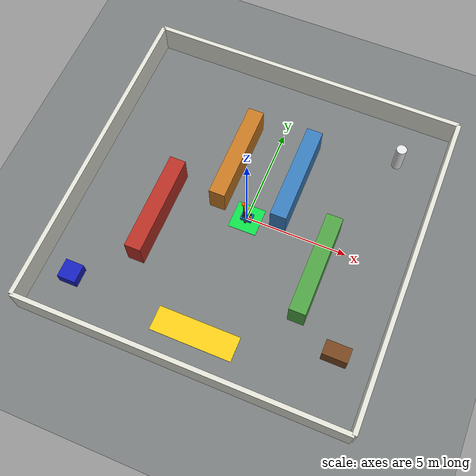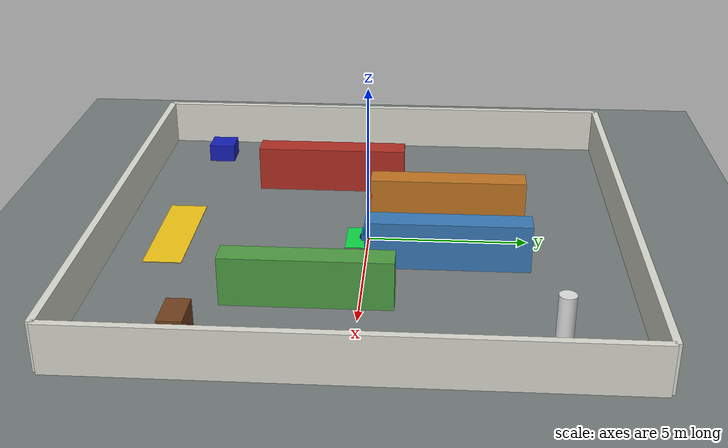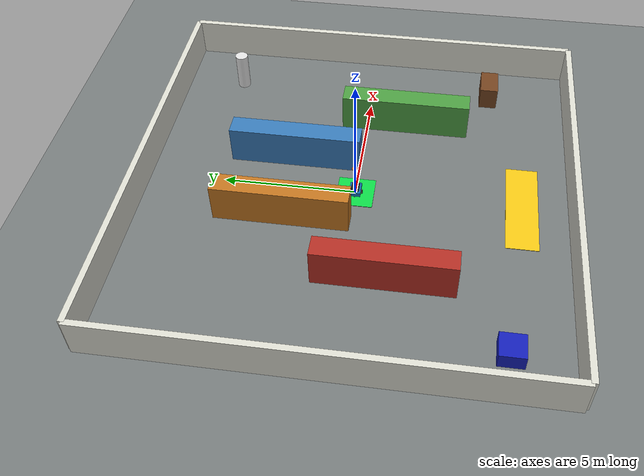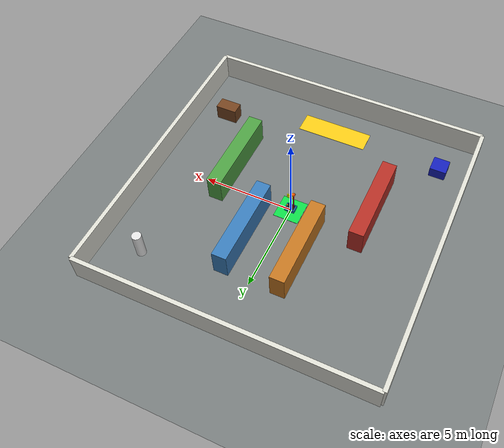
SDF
<sdf version="1.8">
  <world name="warehouse_world">
    <physics name="1ms" type="ignored">
      <max_step_size>0.001</max_step_size>
      <real_time_factor>1.0</real_time_factor>
    </physics>

    <plugin filename="gz-sim-physics-system" name="gz::sim::systems::Physics" />
    <plugin filename="gz-sim-user-commands-system" name="gz::sim::systems::UserCommands" />
    <plugin filename="gz-sim-scene-broadcaster-system" name="gz::sim::systems::SceneBroadcaster" />
    <plugin filename="gz-sim-sensors-system" name="gz::sim::systems::Sensors">
      <render_engine>ogre2</render_engine>
    </plugin>

    <light type="directional" name="sun">
      <pose>0 0 10 0 0 0</pose>
      <diffuse>1 1 1 1</diffuse>
      <specular>0.2 0.2 0.2 1</specular>
      <direction>-0.4 0.5 -1</direction>
    </light>

    <scene>
      <ambient>0.65 0.65 0.65 1</ambient>
      <background>0.82 0.88 0.94 1</background>
      <shadows>true</shadows>
    </scene>

    <model name="ground_plane">
      <static>true</static>
      <link name="link">
        <collision name="collision">
          <geometry>
            <plane>
              <normal>0 0 1</normal>
              <size>24 24</size>
            </plane>
          </geometry>
        </collision>
        <visual name="visual">
          <geometry>
            <plane>
              <normal>0 0 1</normal>
              <size>24 24</size>
            </plane>
          </geometry>
          <material>
            <ambient>0.46 0.48 0.48 1</ambient>
            <diffuse>0.46 0.48 0.48 1</diffuse>
          </material>
        </visual>
      </link>
    </model>

    <model name="wall_north">
      <static>true</static>
      <pose>0 8 0.75 0 0 0</pose>
      <link name="link">
        <collision name="collision"><geometry><box><size>16 0.22 1.5</size></box></geometry></collision>
        <visual name="visual"><geometry><box><size>16 0.22 1.5</size></box></geometry><material><ambient>0.86 0.86 0.82 1</ambient><diffuse>0.86 0.86 0.82 1</diffuse></material></visual>
      </link>
    </model>

    <model name="wall_south">
      <static>true</static>
      <pose>0 -8 0.75 0 0 0</pose>
      <link name="link">
        <collision name="collision"><geometry><box><size>16 0.22 1.5</size></box></geometry></collision>
        <visual name="visual"><geometry><box><size>16 0.22 1.5</size></box></geometry><material><ambient>0.86 0.86 0.82 1</ambient><diffuse>0.86 0.86 0.82 1</diffuse></material></visual>
      </link>
    </model>

    <model name="wall_east">
      <static>true</static>
      <pose>8 0 0.75 0 0 0</pose>
      <link name="link">
        <collision name="collision"><geometry><box><size>0.22 16 1.5</size></box></geometry></collision>
        <visual name="visual"><geometry><box><size>0.22 16 1.5</size></box></geometry><material><ambient>0.86 0.86 0.82 1</ambient><diffuse>0.86 0.86 0.82 1</diffuse></material></visual>
      </link>
    </model>

    <model name="wall_west">
      <static>true</static>
      <pose>-8 0 0.75 0 0 0</pose>
      <link name="link">
        <collision name="collision"><geometry><box><size>0.22 16 1.5</size></box></geometry></collision>
        <visual name="visual"><geometry><box><size>0.22 16 1.5</size></box></geometry><material><ambient>0.86 0.86 0.82 1</ambient><diffuse>0.86 0.86 0.82 1</diffuse></material></visual>
      </link>
    </model>

    <model name="loading_zone_visual">
      <static>true</static>
      <pose>0 -6.2 0.011 0 0 0</pose>
      <link name="link">
        <visual name="visual">
          <geometry><box><size>4.0 1.2 0.02</size></box></geometry>
          <material><ambient>0.95 0.78 0.08 1</ambient><diffuse>0.95 0.78 0.08 1</diffuse></material>
        </visual>
      </link>
    </model>

    <model name="start_zone_visual">
      <static>true</static>
      <pose>0 0 0.012 0 0 0</pose>
      <link name="link">
        <visual name="visual">
          <geometry><box><size>1.4 1.4 0.02</size></box></geometry>
          <material><ambient>0.05 0.85 0.28 1</ambient><diffuse>0.05 0.85 0.28 1</diffuse></material>
        </visual>
      </link>
    </model>

    <include>
      <uri>model://my_robot</uri>
      <name>my_robot</name>
      <pose>0 0 0 0 0 0</pose>
    </include>

    <model name="rack_outer_left">
      <static>true</static>
      <pose>-4.0 -1.5 0.75 0 0 0</pose>
      <link name="link">
        <collision name="collision"><geometry><box><size>0.8 5.0 1.5</size></box></geometry></collision>
        <visual name="visual"><geometry><box><size>0.8 5.0 1.5</size></box></geometry><material><ambient>0.70 0.18 0.14 1</ambient><diffuse>0.70 0.18 0.14 1</diffuse></material></visual>
      </link>
    </model>

    <model name="rack_inner_left">
      <static>true</static>
      <pose>-1.55 2.5 0.75 0 0 0</pose>
      <link name="link">
        <collision name="collision"><geometry><box><size>0.8 5.0 1.5</size></box></geometry></collision>
        <visual name="visual"><geometry><box><size>0.8 5.0 1.5</size></box></geometry><material><ambient>0.76 0.46 0.13 1</ambient><diffuse>0.76 0.46 0.13 1</diffuse></material></visual>
      </link>
    </model>

    <model name="rack_inner_right">
      <static>true</static>
      <pose>1.55 2.5 0.75 0 0 0</pose>
      <link name="link">
        <collision name="collision"><geometry><box><size>0.8 5.0 1.5</size></box></geometry></collision>
        <visual name="visual"><geometry><box><size>0.8 5.0 1.5</size></box></geometry><material><ambient>0.22 0.48 0.72 1</ambient><diffuse>0.22 0.48 0.72 1</diffuse></material></visual>
      </link>
    </model>

    <model name="rack_outer_right">
      <static>true</static>
      <pose>4.0 -1.5 0.75 0 0 0</pose>
      <link name="link">
        <collision name="collision"><geometry><box><size>0.8 5.0 1.5</size></box></geometry></collision>
        <visual name="visual"><geometry><box><size>0.8 5.0 1.5</size></box></geometry><material><ambient>0.30 0.62 0.26 1</ambient><diffuse>0.30 0.62 0.26 1</diffuse></material></visual>
      </link>
    </model>

    <model name="charging_station">
      <static>true</static>
      <pose>-6.4 -5.8 0.30 0 0 0</pose>
      <link name="link">
        <collision name="collision"><geometry><box><size>0.9 0.9 0.6</size></box></geometry></collision>
        <visual name="visual"><geometry><box><size>0.9 0.9 0.6</size></box></geometry><material><ambient>0.08 0.12 0.72 1</ambient><diffuse>0.08 0.12 0.72 1</diffuse></material></visual>
      </link>
    </model>

    <model name="packing_station">
      <static>true</static>
      <pose>6.2 -4.8 0.45 0 0 0</pose>
      <link name="link">
        <collision name="collision"><geometry><box><size>1.2 0.7 0.9</size></box></geometry></collision>
        <visual name="visual"><geometry><box><size>1.2 0.7 0.9</size></box></geometry><material><ambient>0.45 0.26 0.12 1</ambient><diffuse>0.45 0.26 0.12 1</diffuse></material></visual>
      </link>
    </model>

    <model name="landmark_pillar">
      <static>true</static>
      <pose>5.8 5.6 0.75 0 0 0</pose>
      <link name="link">
        <collision name="collision"><geometry><cylinder><radius>0.25</radius><length>1.5</length></cylinder></geometry></collision>
        <visual name="visual"><geometry><cylinder><radius>0.25</radius><length>1.5</length></cylinder></geometry><material><ambient>0.88 0.88 0.88 1</ambient><diffuse>0.88 0.88 0.88 1</diffuse></material></visual>
      </link>
    </model>
  </world>
</sdf>

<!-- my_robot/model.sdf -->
<sdf version="1.8">
  <model name="my_robot">
    <pose>0 0 0 0 0 0</pose>
    <static>false</static>
    <self_collide>false</self_collide>

    <link name="base_link">
      <pose>0 0 0.16 0 0 0</pose>
      <inertial>
        <mass>10.0</mass>
        <inertia>
          <ixx>0.15</ixx>
          <iyy>0.28</iyy>
          <izz>0.37</izz>
        </inertia>
      </inertial>

      <collision name="base_collision">
        <geometry>
          <box>
            <size>0.56 0.42 0.18</size>
          </box>
        </geometry>
      </collision>

      <visual name="base_visual">
        <geometry>
          <box>
            <size>0.56 0.42 0.18</size>
          </box>
        </geometry>
        <material>
          <ambient>0.08 0.36 0.58 1</ambient>
          <diffuse>0.08 0.46 0.72 1</diffuse>
          <specular>0.2 0.2 0.2 1</specular>
        </material>
      </visual>

      <visual name="top_panel_visual">
        <pose>0 0 0.105 0 0 0</pose>
        <geometry>
          <box>
            <size>0.44 0.30 0.03</size>
          </box>
        </geometry>
        <material>
          <ambient>0.04 0.08 0.10 1</ambient>
          <diffuse>0.04 0.10 0.12 1</diffuse>
        </material>
      </visual>
    </link>

    <link name="left_wheel">
      <pose>0 0.245 0.075 -1.5708 0 0</pose>
      <inertial>
        <mass>0.7</mass>
        <inertia>
          <ixx>0.0012</ixx>
          <iyy>0.0012</iyy>
          <izz>0.0020</izz>
        </inertia>
      </inertial>
      <collision name="collision">
        <geometry>
          <cylinder>
            <radius>0.075</radius>
            <length>0.05</length>
          </cylinder>
        </geometry>
        <surface>
          <friction>
            <ode>
              <mu>1.5</mu>
              <mu2>1.5</mu2>
            </ode>
          </friction>
        </surface>
      </collision>
      <visual name="visual">
        <geometry>
          <cylinder>
            <radius>0.075</radius>
            <length>0.05</length>
          </cylinder>
        </geometry>
        <material>
          <ambient>0.03 0.03 0.03 1</ambient>
          <diffuse>0.03 0.03 0.03 1</diffuse>
        </material>
      </visual>
    </link>

    <link name="right_wheel">
      <pose>0 -0.245 0.075 -1.5708 0 0</pose>
      <inertial>
        <mass>0.7</mass>
        <inertia>
          <ixx>0.0012</ixx>
          <iyy>0.0012</iyy>
          <izz>0.0020</izz>
        </inertia>
      </inertial>
      <collision name="collision">
        <geometry>
          <cylinder>
            <radius>0.075</radius>
            <length>0.05</length>
          </cylinder>
        </geometry>
        <surface>
          <friction>
            <ode>
              <mu>1.5</mu>
              <mu2>1.5</mu2>
            </ode>
          </friction>
        </surface>
      </collision>
      <visual name="visual">
        <geometry>
          <cylinder>
            <radius>0.075</radius>
            <length>0.05</length>
          </cylinder>
        </geometry>
        <material>
          <ambient>0.03 0.03 0.03 1</ambient>
          <diffuse>0.03 0.03 0.03 1</diffuse>
        </material>
      </visual>
    </link>

    <link name="front_castor">
      <pose>0.23 0 0.035 0 0 0</pose>
      <inertial>
        <mass>0.12</mass>
        <inertia>
          <ixx>0.0001</ixx>
          <iyy>0.0001</iyy>
          <izz>0.0001</izz>
        </inertia>
      </inertial>
      <collision name="collision">
        <geometry>
          <sphere>
            <radius>0.035</radius>
          </sphere>
        </geometry>
        <surface>
          <friction>
            <ode>
              <mu>0.05</mu>
              <mu2>0.05</mu2>
            </ode>
          </friction>
        </surface>
      </collision>
      <visual name="visual">
        <geometry>
          <sphere>
            <radius>0.035</radius>
          </sphere>
        </geometry>
        <material>
          <ambient>0.55 0.55 0.55 1</ambient>
          <diffuse>0.55 0.55 0.55 1</diffuse>
        </material>
      </visual>
    </link>

    <link name="rear_castor">
      <pose>-0.23 0 0.035 0 0 0</pose>
      <inertial>
        <mass>0.12</mass>
        <inertia>
          <ixx>0.0001</ixx>
          <iyy>0.0001</iyy>
          <izz>0.0001</izz>
        </inertia>
      </inertial>
      <collision name="collision">
        <geometry>
          <sphere>
            <radius>0.035</radius>
          </sphere>
        </geometry>
        <surface>
          <friction>
            <ode>
              <mu>0.05</mu>
              <mu2>0.05</mu2>
            </ode>
          </friction>
        </surface>
      </collision>
      <visual name="visual">
        <geometry>
          <sphere>
            <radius>0.035</radius>
          </sphere>
        </geometry>
        <material>
          <ambient>0.55 0.55 0.55 1</ambient>
          <diffuse>0.55 0.55 0.55 1</diffuse>
        </material>
      </visual>
    </link>

    <link name="lidar_link">
      <pose>0.20 0 0.32 0 0 0</pose>
      <inertial>
        <mass>0.2</mass>
        <inertia>
          <ixx>0.0002</ixx>
          <iyy>0.0002</iyy>
          <izz>0.0002</izz>
        </inertia>
      </inertial>
      <collision name="collision">
        <geometry>
          <cylinder>
            <radius>0.045</radius>
            <length>0.06</length>
          </cylinder>
        </geometry>
      </collision>
      <visual name="visual">
        <geometry>
          <cylinder>
            <radius>0.045</radius>
            <length>0.06</length>
          </cylinder>
        </geometry>
        <material>
          <ambient>1 0.62 0 1</ambient>
          <diffuse>1 0.62 0 1</diffuse>
          <emissive>0.4 0.18 0 1</emissive>
        </material>
      </visual>
      <sensor name="lidar" type="gpu_lidar">
        <pose>0 0 0 0 0 0</pose>
        <update_rate>10</update_rate>
        <lidar>
          <scan>
            <horizontal>
              <samples>720</samples>
              <resolution>1</resolution>
              <min_angle>-3.14159</min_angle>
              <max_angle>3.14159</max_angle>
            </horizontal>
          </scan>
          <range>
            <min>0.08</min>
            <max>12.0</max>
            <resolution>0.01</resolution>
          </range>
          <noise>
            <type>gaussian</type>
            <mean>0.0</mean>
            <stddev>0.01</stddev>
          </noise>
        </lidar>
        <always_on>true</always_on>
        <topic>/scan</topic>
      </sensor>
    </link>

    <link name="visibility_marker">
      <pose>-0.16 0 0.78 0 0 0</pose>
      <inertial>
        <mass>0.02</mass>
        <inertia>
          <ixx>0.00002</ixx>
          <iyy>0.00002</iyy>
          <izz>0.00002</izz>
        </inertia>
      </inertial>
      <visual name="marker_pole">
        <geometry>
          <cylinder>
            <radius>0.03</radius>
            <length>1.10</length>
          </cylinder>
        </geometry>
        <material>
          <ambient>1 0 0 1</ambient>
          <diffuse>1 0 0 1</diffuse>
          <emissive>0.5 0 0 1</emissive>
        </material>
      </visual>
      <visual name="marker_flag">
        <pose>0.18 0 0.38 0 0 0</pose>
        <geometry>
          <box>
            <size>0.36 0.05 0.24</size>
          </box>
        </geometry>
        <material>
          <ambient>1 1 0 1</ambient>
          <diffuse>1 1 0 1</diffuse>
          <emissive>0.6 0.6 0 1</emissive>
        </material>
      </visual>
      <visual name="marker_beacon">
        <pose>0 0 0.62 0 0 0</pose>
        <geometry>
          <sphere>
            <radius>0.10</radius>
          </sphere>
        </geometry>
        <material>
          <ambient>1 0.35 0 1</ambient>
          <diffuse>1 0.35 0 1</diffuse>
          <emissive>0.8 0.2 0 1</emissive>
        </material>
      </visual>
    </link>

    <joint name="left_wheel_joint" type="revolute">
      <parent>base_link</parent>
      <child>left_wheel</child>
      <axis>
        <xyz>0 0 1</xyz>
        <limit>
          <effort>30</effort>
          <lower>-1e16</lower>
          <upper>1e16</upper>
        </limit>
      </axis>
    </joint>

    <joint name="right_wheel_joint" type="revolute">
      <parent>base_link</parent>
      <child>right_wheel</child>
      <axis>
        <xyz>0 0 1</xyz>
        <limit>
          <effort>30</effort>
          <lower>-1e16</lower>
          <upper>1e16</upper>
        </limit>
      </axis>
    </joint>

    <joint name="front_castor_joint" type="ball">
      <parent>base_link</parent>
      <child>front_castor</child>
    </joint>

    <joint name="rear_castor_joint" type="ball">
      <parent>base_link</parent>
      <child>rear_castor</child>
    </joint>

    <joint name="lidar_joint" type="fixed">
      <parent>base_link</parent>
      <child>lidar_link</child>
    </joint>

    <joint name="visibility_marker_joint" type="fixed">
      <parent>base_link</parent>
      <child>visibility_marker</child>
    </joint>

    <plugin filename="gz-sim-diff-drive-system" name="gz::sim::systems::DiffDrive">
      <left_joint>left_wheel_joint</left_joint>
      <right_joint>right_wheel_joint</right_joint>
      <wheel_separation>0.49</wheel_separation>
      <wheel_radius>0.075</wheel_radius>
      <max_linear_acceleration>0.8</max_linear_acceleration>
      <max_wheel_torque>30.0</max_wheel_torque>
      <topic>/cmd_vel</topic>
      <odom_topic>/odom</odom_topic>
      <frame_id>odom</frame_id>
      <child_frame_id>base_link</child_frame_id>
      <odom_publisher_frequency>30</odom_publisher_frequency>
      <tf_topic>/tf</tf_topic>
    </plugin>
  </model>
</sdf>
